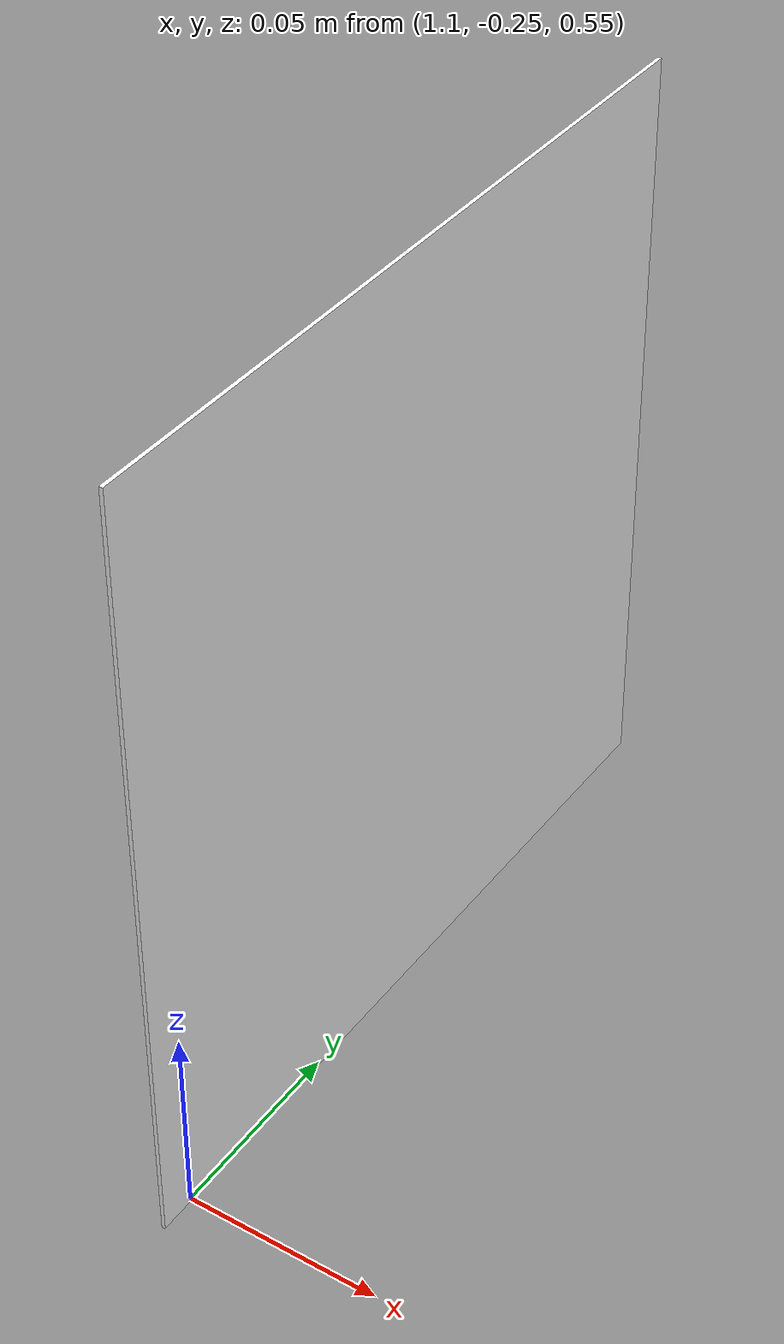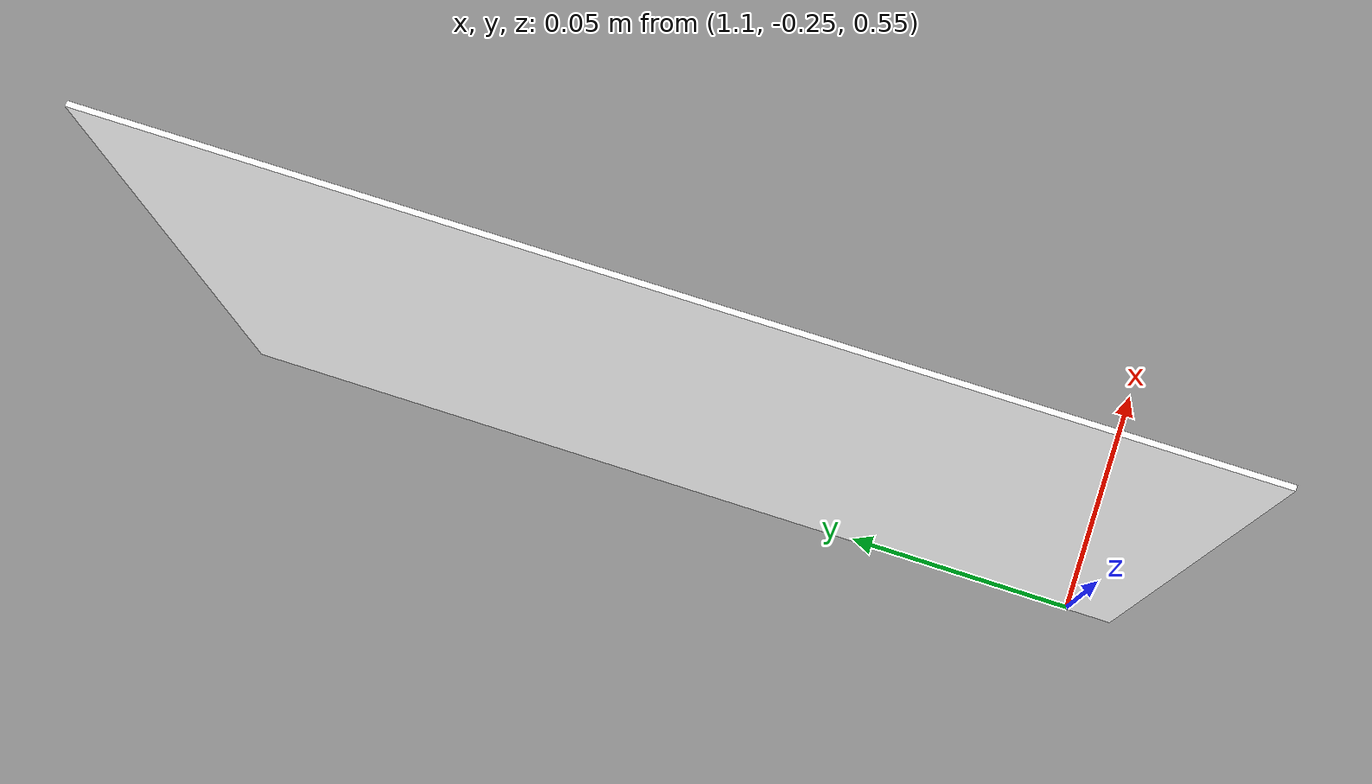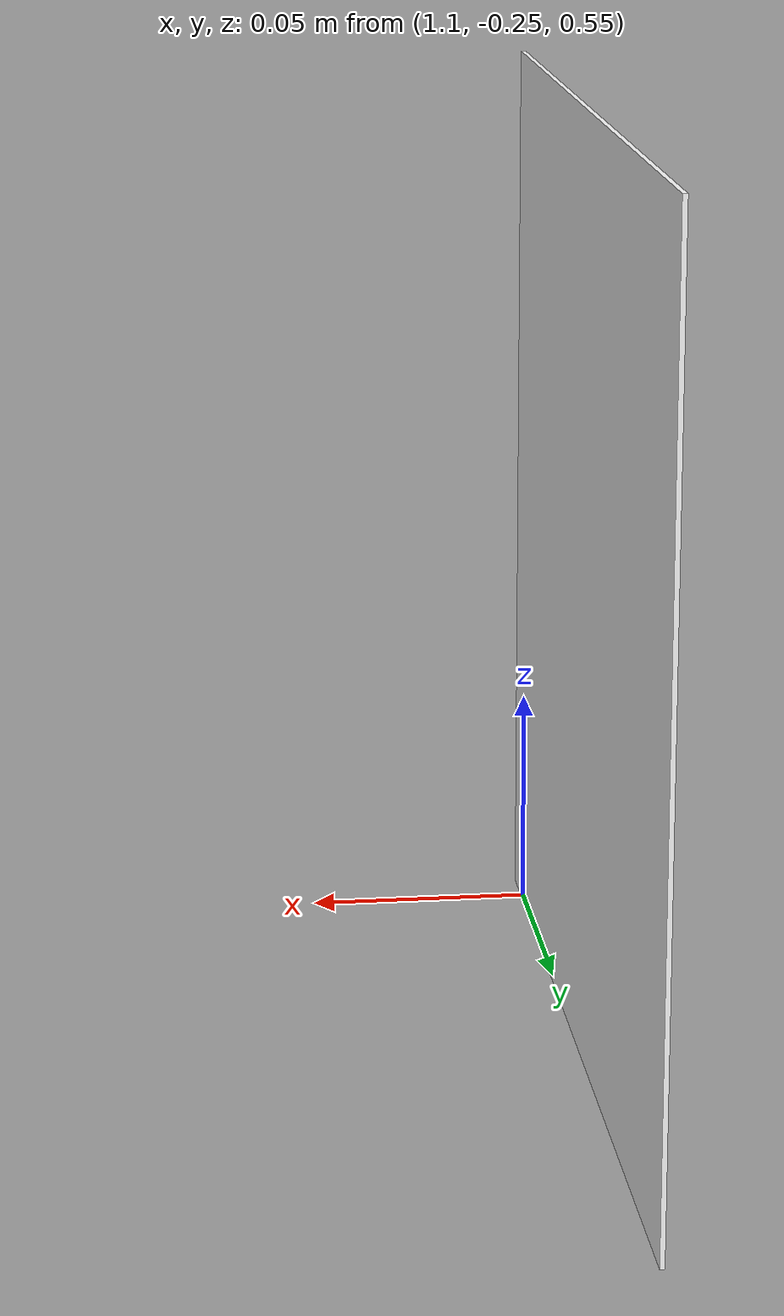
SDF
<?xml version="1.0" ?>
<sdf version="1.4">
  <!-- We use a custom world for the rrbot so that the camera angle is launched correctly -->

  <world name="default">
    <!-- Included light -->
    <include>
      <uri>https://fuel.gazebosim.org/1.0/OpenRobotics/models/Sun</uri>
    </include>

    <!-- Included model -->
    <include>
      <uri>https://fuel.gazebosim.org/1.0/OpenRobotics/models/Ground Plane</uri>
    </include>

    <include>
      <uri>
        model://arucotag
      </uri>
      <name>arucotag</name>
      <pose>1.10 -0.16 0.65 0 1.57 0</pose>
    </include>

    <gravity>0 0 0</gravity>

    <!-- Focus camera on tall pendulum -->
    <gui fullscreen='0'>
      <camera name='user_camera'>
        <pose>4.927360 -4.376610 3.740080 0.000000 0.275643 2.356190</pose>
        <view_controller>orbit</view_controller>
      </camera>
    </gui>

  </world>
</sdf>

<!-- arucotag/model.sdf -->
<sdf version='1.9'>
  <model name='arucotag'>
    <static>true</static>
    <pose>0 0 0 0 0 0</pose>
    <link name='base'>
      <visual name='base_visual'>
        <geometry>
          <box>
            <size>0.2 0.2 0.001</size>
          </box>
        </geometry>
        <material>
          <diffuse>1 1 1 1</diffuse>
          <specular>0.4 0.4 0.4 1</specular>
          <pbr>
            <metal>
              <albedo_map>model://arucotag/aruco-201.png</albedo_map>
            </metal>
          </pbr>
        </material>
      </visual>
      <collision name='base_collision'>
        <geometry>
          <box>
            <size>0.2 0.2 0.001</size>
          </box>
        </geometry>
      </collision>
    </link>
  </model>
</sdf>
